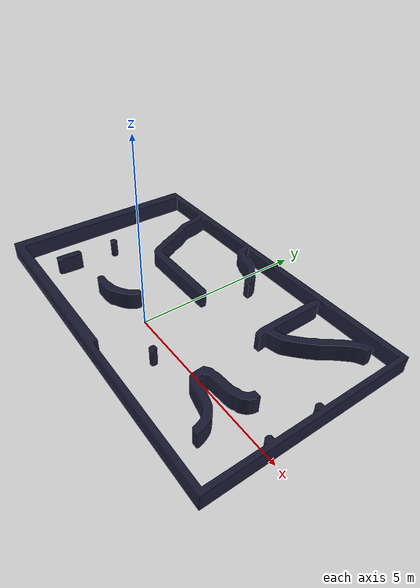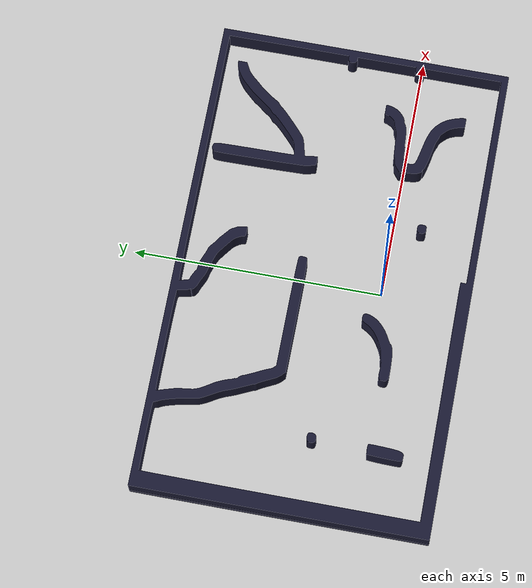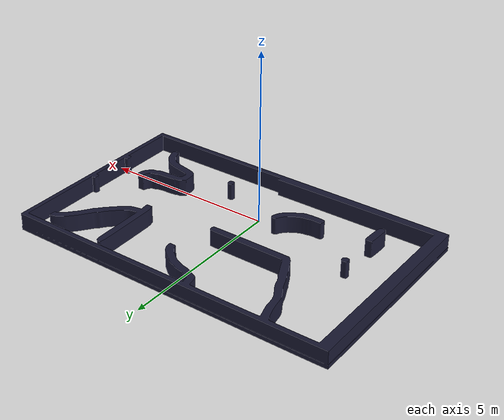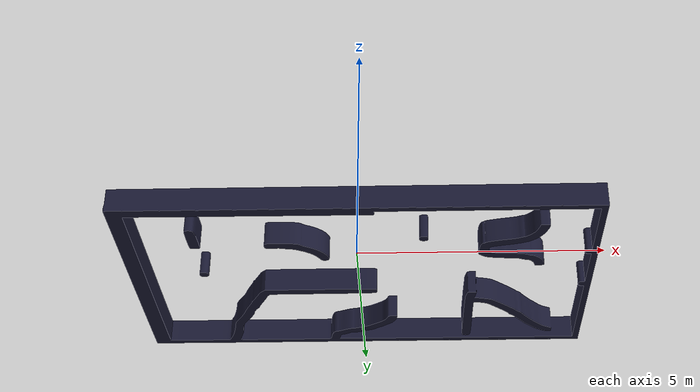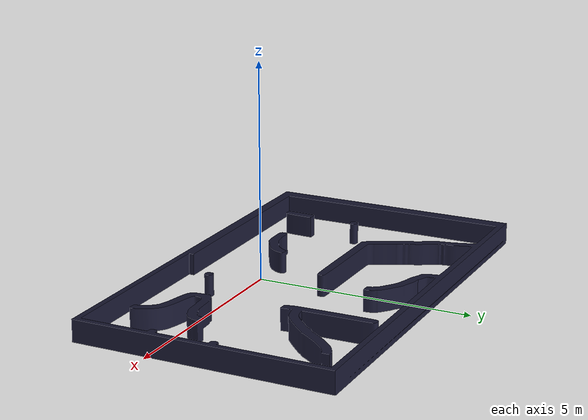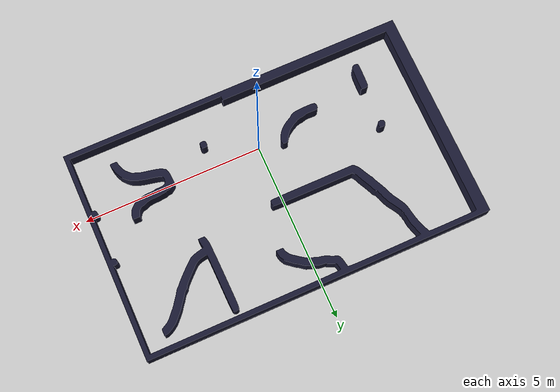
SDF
<?xml version="1.0" ?>
<sdf version="1.5">
  <model name="mapa">
  <pose>0.0 1.2 0.25 0.0 0.0 0.0</pose>
    <static>true</static>

    <link name="base_link">
      <inertial>
        <pose>0 0 0 0 0 0</pose>
        <inertia>
          <ixx>4.2111447e-02</ixx>
          <ixy>0</ixy>
          <ixz>0</ixz>
          <iyy>4.2111447e-02</iyy>
          <iyz>0</iyz>
          <izz>7.5254874e-02</izz>
        </inertia>
        <mass>2</mass>
      </inertial>

      <collision name="base_collision">
        <pose>0 0 0 0 0 0</pose>
        <geometry>
          <mesh>
            <uri>model://mapa/meshes/mapa.stl</uri>
            <scale>0.01 0.01 0.01</scale>
          </mesh>
        </geometry>
      </collision>

      <visual name="base_visual">
        <pose>0 0 0 0 0 0</pose>
        <geometry>
          <mesh>
            <uri>model://mapa/meshes/mapa.stl</uri>
            <scale>0.01 0.01 0.01</scale>
          </mesh>
        </geometry>
        <material> <!-- map material -->
          <ambient>0.1 0.1 0.1 1</ambient>
          <diffuse>0.1 0.1 0.2 1</diffuse>
          <specular>0 0 0 0</specular>
          <emissive>0 0 0 1</emissive>
        </material> <!-- End map material -->
      </visual>
    </link>
  </model>
</sdf>
